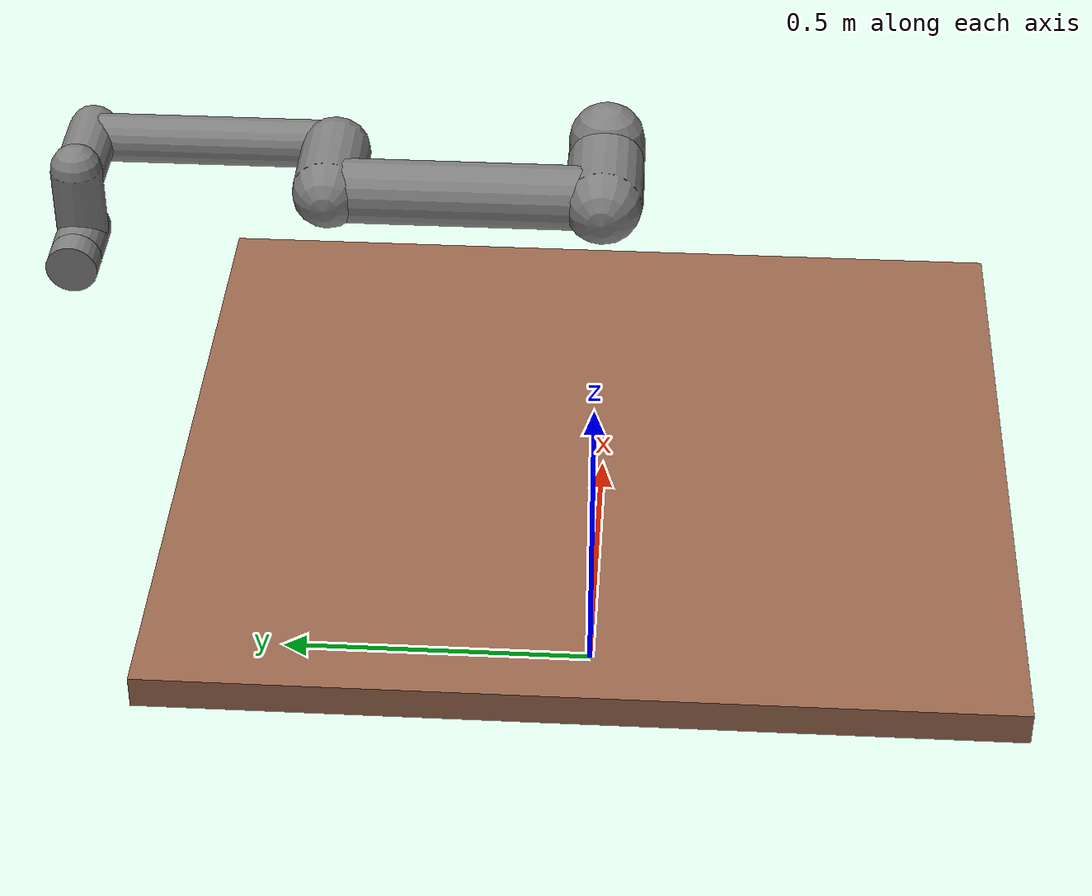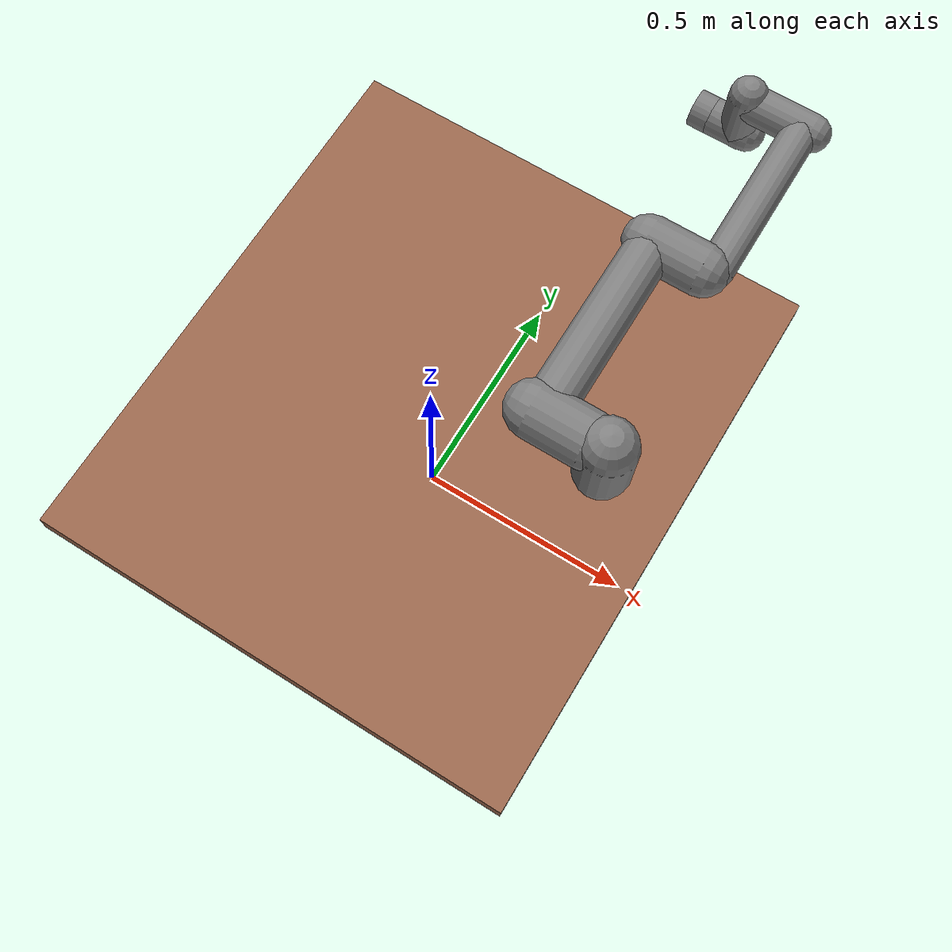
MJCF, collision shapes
<mujoco model="ur5e_1">
  <compiler angle="radian" meshdir="assets" autolimits="true"/>

  <option integrator="implicitfast"/>
  <option timestep="0.01" iterations="1" ls_iterations="6">
    <flag eulerdamp="disable"/>
  </option>

  <default>
    <default class="ur5e_1">
      <material specular="0.5" shininess="0.25"/>
      <joint axis="0 1 0" range="-6.28319 6.28319" armature="0.1"/>
      <general gaintype="fixed" biastype="affine" ctrlrange="-6.2831 6.2831" gainprm="2000" biasprm="0 -2000 -400"
        forcerange="-150 150"/>
      <default class="size3_1">
        <default class="size3_limited_1">
          <joint range="-3.1415 3.1415"/>
          <general ctrlrange="-3.1415 3.1415"/>
        </default>
      </default>
      <default class="size1_1">
        <general gainprm="500" biasprm="0 -500 -100" forcerange="-28 28"/>
      </default>
      <default class="visual_1">
        <geom type="mesh" contype="0" conaffinity="0" group="2"/>
      </default>
      <default class="collision_1">
        <geom type="capsule" group="3"/>
        <default class="eef_collision_1">
          <geom type="cylinder"/>
        </default>
      </default>
      <site size="0.001" rgba="0.5 0.5 0.5 0.3" group="4"/>
    </default>
  </default>

  <asset>
    <material class="ur5e_1" name="black_1" rgba="0.033 0.033 0.033 1"/>
    <material class="ur5e_1" name="jointgray_1" rgba="0.278 0.278 0.278 1"/>
    <material class="ur5e_1" name="linkgray_1" rgba="0.82 0.82 0.82 1"/>
    <material class="ur5e_1" name="urblue_1" rgba="0.49 0.678 0.8 1"/>

    <mesh name="base_0_1" file="ur5e/base_0.obj"/>
    <mesh name="base_1_1" file="ur5e/base_1.obj"/>
    <mesh name="shoulder_0_1" file="ur5e/shoulder_0.obj"/>
    <mesh name="shoulder_1_1" file="ur5e/shoulder_1.obj"/>
    <mesh name="shoulder_2_1" file="ur5e/shoulder_2.obj"/>
    <mesh name="upperarm_0_1" file="ur5e/upperarm_0.obj"/>
    <mesh name="upperarm_1_1" file="ur5e/upperarm_1.obj"/>
    <mesh name="upperarm_2_1" file="ur5e/upperarm_2.obj"/>
    <mesh name="upperarm_3_1" file="ur5e/upperarm_3.obj"/>
    <mesh name="forearm_0_1" file="ur5e/forearm_0.obj"/>
    <mesh name="forearm_1_1" file="ur5e/forearm_1.obj"/>
    <mesh name="forearm_2_1" file="ur5e/forearm_2.obj"/>
    <mesh name="forearm_3_1" file="ur5e/forearm_3.obj"/>
    <mesh name="wrist1_0_1" file="ur5e/wrist1_0.obj"/>
    <mesh name="wrist1_1_1" file="ur5e/wrist1_1.obj"/>
    <mesh name="wrist1_2_1" file="ur5e/wrist1_2.obj"/>
    <mesh name="wrist2_0_1" file="ur5e/wrist2_0.obj"/>
    <mesh name="wrist2_1_1" file="ur5e/wrist2_1.obj"/>
    <mesh name="wrist2_2_1" file="ur5e/wrist2_2.obj"/>
    <mesh name="wrist3_1" file="ur5e/wrist3.obj"/>
  </asset>

  <worldbody>
    <light name="spotlight_1" mode="targetbodycom" target="wrist_2_link_1" pos="0 -1 2"/>
    <body name="table_1" pos="0 0 0.4">
      <geom name="table_geom_1" type="box" size="0.546 0.625 0.025" rgba="0.6 0.4 0.3 1"/>
      <body name="base_1" quat="1 0 0 1" childclass="ur5e_1" pos="0.386 0 0.161">
        <inertial mass="4.0" pos="0 0 0" diaginertia="0.00443333156 0.00443333156 0.0072"/>
        <geom mesh="base_0_1" material="black_1" class="visual_1"/>
        <geom mesh="base_1_1" material="jointgray_1" class="visual_1"/>
        <body name="shoulder_link_1" pos="0 0 0.163">
          <inertial mass="3.7" pos="0 0 0" diaginertia="0.0102675 0.0102675 0.00666"/>
          <joint name="shoulder_pan_joint_1" class="size3_1" axis="0 0 1"/>
          <geom mesh="shoulder_0_1" material="urblue_1" class="visual_1"/>
          <geom mesh="shoulder_1_1" material="black_1" class="visual_1"/>
          <geom mesh="shoulder_2_1" material="jointgray_1" class="visual_1"/>
          <geom class="collision_1" size="0.06 0.06" pos="0 0 -0.04"/>
          <body name="upper_arm_link_1" pos="0 0.138 0" quat="1 0 1 0">
            <inertial mass="8.393" pos="0 0 0.2125" diaginertia="0.133886 0.133886 0.0151074"/>
            <joint name="shoulder_lift_joint_1" class="size3_1"/>
            <geom mesh="upperarm_0_1" material="linkgray_1" class="visual_1"/>
            <geom mesh="upperarm_1_1" material="black_1" class="visual_1"/>
            <geom mesh="upperarm_2_1" material="jointgray_1" class="visual_1"/>
            <geom mesh="upperarm_3_1" material="urblue_1" class="visual_1"/>
            <geom class="collision_1" pos="0 -0.04 0" quat="1 1 0 0" size="0.06 0.06"/>
            <geom class="collision_1" size="0.05 0.2" pos="0 0 0.2"/>
            <body name="forearm_link_1" pos="0 -0.131 0.425">
              <inertial mass="2.275" pos="0 0 0.196" diaginertia="0.0311796 0.0311796 0.004095"/>
              <joint name="elbow_joint_1" class="size3_limited_1"/>
              <geom mesh="forearm_0_1" material="urblue_1" class="visual_1"/>
              <geom mesh="forearm_1_1" material="linkgray_1" class="visual_1"/>
              <geom mesh="forearm_2_1" material="black_1" class="visual_1"/>
              <geom mesh="forearm_3_1" material="jointgray_1" class="visual_1"/>
              <geom class="collision_1" pos="0 0.08 0" quat="1 1 0 0" size="0.055 0.06"/>
              <geom class="collision_1" size="0.038 0.19" pos="0 0 0.2"/>
              <body name="wrist_1_link_1" pos="0 0 0.392" quat="1 0 1 0">
                <inertial mass="1.219" pos="0 0.127 0" diaginertia="0.0025599 0.0025599 0.0021942"/>
                <joint name="wrist_1_joint_1" class="size1_1"/>
                <geom mesh="wrist1_0_1" material="black_1" class="visual_1"/>
                <geom mesh="wrist1_1_1" material="urblue_1" class="visual_1"/>
                <geom mesh="wrist1_2_1" material="jointgray_1" class="visual_1"/>
                <geom class="collision_1" pos="0 0.05 0" quat="1 1 0 0" size="0.04 0.07"/>
                <body name="wrist_2_link_1" pos="0 0.127 0">
                  <inertial mass="1.219" pos="0 0 0.1" diaginertia="0.0025599 0.0025599 0.0021942"/>
                  <joint name="wrist_2_joint_1" axis="0 0 1" class="size1_1"/>
                  <geom mesh="wrist2_0_1" material="black_1" class="visual_1"/>
                  <geom mesh="wrist2_1_1" material="urblue_1" class="visual_1"/>
                  <geom mesh="wrist2_2_1" material="jointgray_1" class="visual_1"/>
                  <geom class="collision_1" size="0.04 0.06" pos="0 0 0.04"/>
                  <geom class="collision_1" pos="0 0.02 0.1" quat="1 1 0 0" size="0.04 0.04"/>
                  <body name="wrist_3_link_1" pos="0 0 0.1">
                    <inertial mass="0.1889" pos="0 0.0771683 0" quat="1 0 0 1"
                      diaginertia="0.000132134 9.90863e-05 9.90863e-05"/>
                    <joint name="wrist_3_joint_1" class="size1_1"/>
                    <geom material="linkgray_1" mesh="wrist3_1" class="visual_1"/>
                    <geom class="eef_collision_1" pos="0 0.08 0" quat="1 1 0 0" size="0.04 0.02"/>
                    <site name="attachment_site_1" pos="0 0.1 0" quat="-1 1 0 0"/>
                  </body>
                </body>
              </body>
            </body>
          </body>
        </body>
      </body>
    </body>
  </worldbody>

  <actuator>
    <general class="size3_1" name="shoulder_pan_1" joint="shoulder_pan_joint_1"/>
    <general class="size3_1" name="shoulder_lift_1" joint="shoulder_lift_joint_1"/>
    <general class="size3_limited_1" name="elbow_1" joint="elbow_joint_1"/>
    <general class="size1_1" name="wrist_1_1" joint="wrist_1_joint_1"/>
    <general class="size1_1" name="wrist_2_1" joint="wrist_2_joint_1"/>
    <general class="size1_1" name="wrist_3_1" joint="wrist_3_joint_1"/>
  </actuator>

</mujoco>
